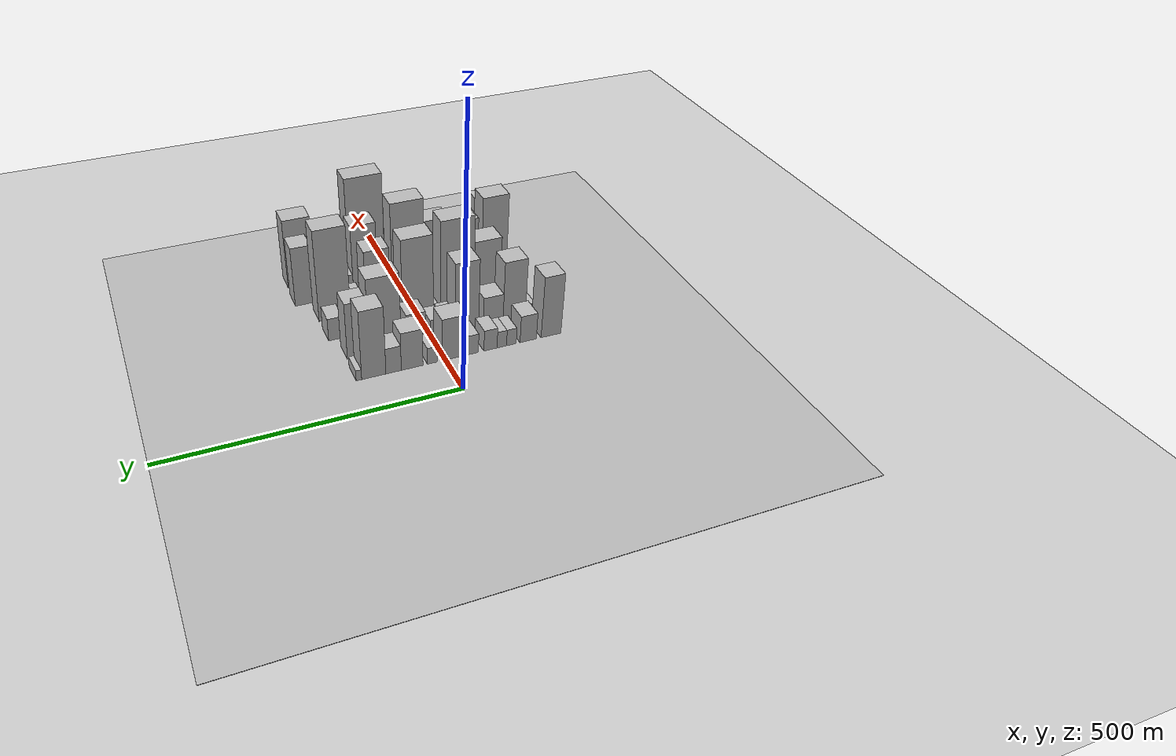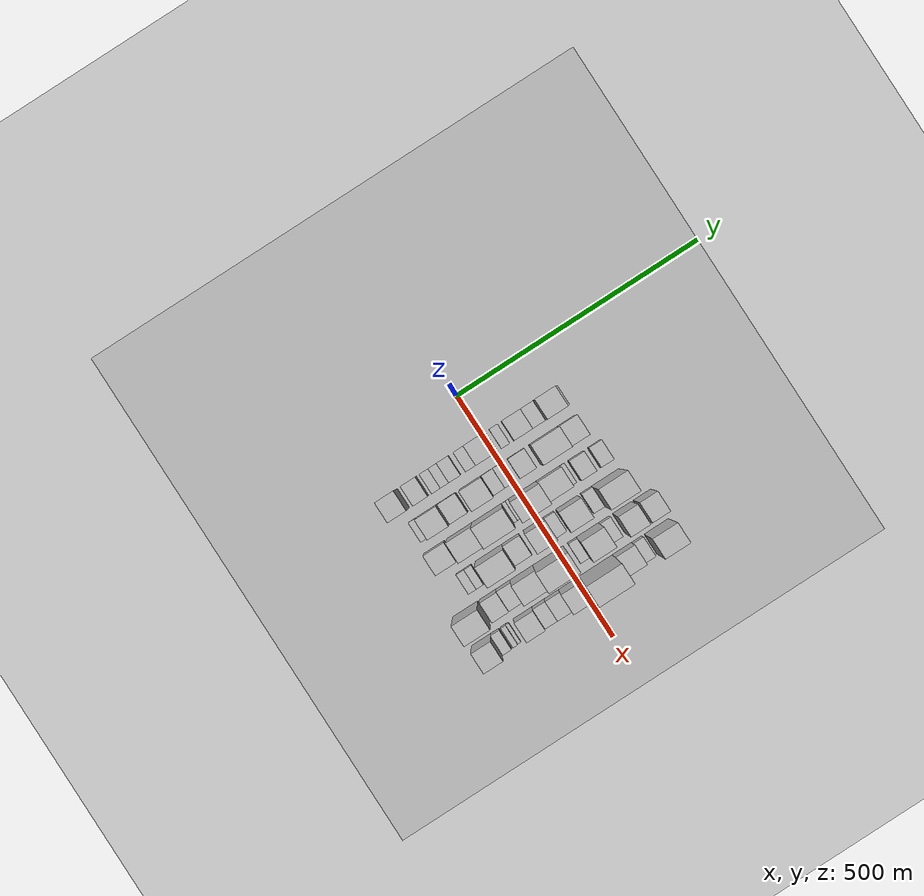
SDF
<sdf version="1.6">
 <world name="default">
  <include><name>ground_plane_1</name><uri>model://HANNAS_ground_plane</uri></include>
  <include>
   <name>ground_plane_2</name>
   <uri>model://HANNAS_ground_plane</uri>
   <pose>100 0 0  0 0 0</pose>
  </include>
  <model name="building_20">
   <static>1</static>
   <pose>100.0000 -193.5699 0 0.000000 0.000000 0.000000</pose>
   <link name="link">
    <pose>0 0 61.50 0 0 0</pose>
    <collision name="collision"><geometry><box><size>40.0000 37.4325 123.0000</size></box></geometry></collision>
    <visual name="visual">
     <cast_shadows>0</cast_shadows>
     <geometry><box><size>40.0000 37.4325 123.0000</size></box></geometry>
     <material>
      <script>
       <uri>model://HANNAS_wall/materials/scripts</uri>
       <uri>model://HANNAS_wall/materials/textures</uri>
       <name>vrc/HANNAS_wall</name>
      </script>
     </material>
    </visual>
   </link>
  </model>
  <model name="building_21">
   <static>1</static>
   <pose>100.0000 -150.5944 0 0.000000 0.000000 0.000000</pose>
   <link name="link">
    <pose>0 0 27.00 0 0 0</pose>
    <collision name="collision"><geometry><box><size>40.0000 30.5184 54.0000</size></box></geometry></collision>
    <visual name="visual">
     <cast_shadows>0</cast_shadows>
     <geometry><box><size>40.0000 30.5184 54.0000</size></box></geometry>
     <material>
      <script>
       <uri>model://HANNAS_wall/materials/scripts</uri>
       <uri>model://HANNAS_wall/materials/textures</uri>
       <name>vrc/HANNAS_wall</name>
      </script>
     </material>
    </visual>
   </link>
  </model>
  <model name="building_22">
   <static>1</static>
   <pose>100.0000 -119.3798 0 0.000000 0.000000 0.000000</pose>
   <link name="link">
    <pose>0 0 16.50 0 0 0</pose>
    <collision name="collision"><geometry><box><size>40.0000 17.9109 33.0000</size></box></geometry></collision>
    <visual name="visual">
     <cast_shadows>0</cast_shadows>
     <geometry><box><size>40.0000 17.9109 33.0000</size></box></geometry>
     <material>
      <script>
       <uri>model://HANNAS_wall/materials/scripts</uri>
       <uri>model://HANNAS_wall/materials/textures</uri>
       <name>vrc/HANNAS_wall</name>
      </script>
     </material>
    </visual>
   </link>
  </model>
  <model name="building_23">
   <static>1</static>
   <pose>100.0000 -101.7180 0 0.000000 0.000000 0.000000</pose>
   <link name="link">
    <pose>0 0 16.50 0 0 0</pose>
    <collision name="collision"><geometry><box><size>40.0000 17.4126 33.0000</size></box></geometry></collision>
    <visual name="visual">
     <cast_shadows>0</cast_shadows>
     <geometry><box><size>40.0000 17.4126 33.0000</size></box></geometry>
     <material>
      <script>
       <uri>model://HANNAS_wall/materials/scripts</uri>
       <uri>model://HANNAS_wall/materials/textures</uri>
       <name>vrc/HANNAS_wall</name>
      </script>
     </material>
    </visual>
   </link>
  </model>
  <model name="building_24">
   <static>1</static>
   <pose>100.0000 -80.9346 0 0.000000 0.000000 0.000000</pose>
   <link name="link">
    <pose>0 0 21.00 0 0 0</pose>
    <collision name="collision"><geometry><box><size>40.0000 24.1541 42.0000</size></box></geometry></collision>
    <visual name="visual">
     <cast_shadows>0</cast_shadows>
     <geometry><box><size>40.0000 24.1541 42.0000</size></box></geometry>
     <material>
      <script>
       <uri>model://HANNAS_wall/materials/scripts</uri>
       <uri>model://HANNAS_wall/materials/textures</uri>
       <name>vrc/HANNAS_wall</name>
      </script>
     </material>
    </visual>
   </link>
  </model>
  <model name="building_25">
   <static>1</static>
   <pose>100.0000 -48.1983 0 0.000000 0.000000 0.000000</pose>
   <link name="link">
    <pose>0 0 19.50 0 0 0</pose>
    <collision name="collision"><geometry><box><size>40.0000 21.3186 39.0000</size></box></geometry></collision>
    <visual name="visual">
     <cast_shadows>0</cast_shadows>
     <geometry><box><size>40.0000 21.3186 39.0000</size></box></geometry>
     <material>
      <script>
       <uri>model://HANNAS_wall/materials/scripts</uri>
       <uri>model://HANNAS_wall/materials/textures</uri>
       <name>vrc/HANNAS_wall</name>
      </script>
     </material>
    </visual>
   </link>
  </model>
  <model name="building_26">
   <static>1</static>
   <pose>100.0000 -15.3454 0 0.000000 0.000000 0.000000</pose>
   <link name="link">
    <pose>0 0 42.00 0 0 0</pose>
    <collision name="collision"><geometry><box><size>40.0000 44.3872 84.0000</size></box></geometry></collision>
    <visual name="visual">
     <cast_shadows>0</cast_shadows>
     <geometry><box><size>40.0000 44.3872 84.0000</size></box></geometry>
     <material>
      <script>
       <uri>model://HANNAS_wall/materials/scripts</uri>
       <uri>model://HANNAS_wall/materials/textures</uri>
       <name>vrc/HANNAS_wall</name>
      </script>
     </material>
    </visual>
   </link>
  </model>
  <model name="building_27">
   <static>1</static>
   <pose>100.0000 23.5425 0 0.000000 0.000000 0.000000</pose>
   <link name="link">
    <pose>0 0 16.50 0 0 0</pose>
    <collision name="collision"><geometry><box><size>40.0000 17.3886 33.0000</size></box></geometry></collision>
    <visual name="visual">
     <cast_shadows>0</cast_shadows>
     <geometry><box><size>40.0000 17.3886 33.0000</size></box></geometry>
     <material>
      <script>
       <uri>model://HANNAS_wall/materials/scripts</uri>
       <uri>model://HANNAS_wall/materials/textures</uri>
       <name>vrc/HANNAS_wall</name>
      </script>
     </material>
    </visual>
   </link>
  </model>
  <model name="building_28">
   <static>1</static>
   <pose>100.0000 59.1614 0 0.000000 0.000000 0.000000</pose>
   <link name="link">
    <pose>0 0 37.50 0 0 0</pose>
    <collision name="collision"><geometry><box><size>40.0000 37.8491 75.0000</size></box></geometry></collision>
    <visual name="visual">
     <cast_shadows>0</cast_shadows>
     <geometry><box><size>40.0000 37.8491 75.0000</size></box></geometry>
     <material>
      <script>
       <uri>model://HANNAS_wall/materials/scripts</uri>
       <uri>model://HANNAS_wall/materials/textures</uri>
       <name>vrc/HANNAS_wall</name>
      </script>
     </material>
    </visual>
   </link>
  </model>
  <model name="building_29">
   <static>1</static>
   <pose>100.0000 91.3784 0 0.000000 0.000000 0.000000</pose>
   <link name="link">
    <pose>0 0 25.50 0 0 0</pose>
    <collision name="collision"><geometry><box><size>40.0000 26.5849 51.0000</size></box></geometry></collision>
    <visual name="visual">
     <cast_shadows>0</cast_shadows>
     <geometry><box><size>40.0000 26.5849 51.0000</size></box></geometry>
     <material>
      <script>
       <uri>model://HANNAS_wall/materials/scripts</uri>
       <uri>model://HANNAS_wall/materials/textures</uri>
       <name>vrc/HANNAS_wall</name>
      </script>
     </material>
    </visual>
   </link>
  </model>
  <model name="building_30">
   <static>1</static>
   <pose>100.0000 125.3945 0 0.000000 0.000000 0.000000</pose>
   <link name="link">
    <pose>0 0 67.50 0 0 0</pose>
    <collision name="collision"><geometry><box><size>40.0000 41.4472 135.0000</size></box></geometry></collision>
    <visual name="visual">
     <cast_shadows>0</cast_shadows>
     <geometry><box><size>40.0000 41.4472 135.0000</size></box></geometry>
     <material>
      <script>
       <uri>model://HANNAS_wall/materials/scripts</uri>
       <uri>model://HANNAS_wall/materials/textures</uri>
       <name>vrc/HANNAS_wall</name>
      </script>
     </material>
    </visual>
   </link>
  </model>
  <model name="building_31">
   <static>1</static>
   <pose>100.0000 150.7980 0 0.000000 0.000000 0.000000</pose>
   <link name="link">
    <pose>0 0 10.50 0 0 0</pose>
    <collision name="collision"><geometry><box><size>40.0000 9.3599 21.0000</size></box></geometry></collision>
    <visual name="visual">
     <cast_shadows>0</cast_shadows>
     <geometry><box><size>40.0000 9.3599 21.0000</size></box></geometry>
     <material>
      <script>
       <uri>model://HANNAS_wall/materials/scripts</uri>
       <uri>model://HANNAS_wall/materials/textures</uri>
       <name>vrc/HANNAS_wall</name>
      </script>
     </material>
    </visual>
   </link>
  </model>
  <model name="building_72">
   <static>1</static>
   <pose>160.0000 -180.8252 0 0.000000 0.000000 0.000000</pose>
   <link name="link">
    <pose>0 0 15.00 0 0 0</pose>
    <collision name="collision"><geometry><box><size>40.0000 17.7668 30.0000</size></box></geometry></collision>
    <visual name="visual">
     <cast_shadows>0</cast_shadows>
     <geometry><box><size>40.0000 17.7668 30.0000</size></box></geometry>
     <material>
      <script>
       <uri>model://HANNAS_wall/materials/scripts</uri>
       <uri>model://HANNAS_wall/materials/textures</uri>
       <name>vrc/HANNAS_wall</name>
      </script>
     </material>
    </visual>
   </link>
  </model>
  <model name="building_73">
   <static>1</static>
   <pose>160.0000 -150.7894 0 0.000000 0.000000 0.000000</pose>
   <link name="link">
    <pose>0 0 63.00 0 0 0</pose>
    <collision name="collision"><geometry><box><size>40.0000 42.3049 126.0000</size></box></geometry></collision>
    <visual name="visual">
     <cast_shadows>0</cast_shadows>
     <geometry><box><size>40.0000 42.3049 126.0000</size></box></geometry>
     <material>
      <script>
       <uri>model://HANNAS_wall/materials/scripts</uri>
       <uri>model://HANNAS_wall/materials/textures</uri>
       <name>vrc/HANNAS_wall</name>
      </script>
     </material>
    </visual>
   </link>
  </model>
  <model name="building_74">
   <static>1</static>
   <pose>160.0000 -111.1979 0 0.000000 0.000000 0.000000</pose>
   <link name="link">
    <pose>0 0 31.50 0 0 0</pose>
    <collision name="collision"><geometry><box><size>40.0000 36.8780 63.0000</size></box></geometry></collision>
    <visual name="visual">
     <cast_shadows>0</cast_shadows>
     <geometry><box><size>40.0000 36.8780 63.0000</size></box></geometry>
     <material>
      <script>
       <uri>model://HANNAS_wall/materials/scripts</uri>
       <uri>model://HANNAS_wall/materials/textures</uri>
       <name>vrc/HANNAS_wall</name>
      </script>
     </material>
    </visual>
   </link>
  </model>
  <model name="building_75">
   <static>1</static>
   <pose>160.0000 -62.0169 0 0.000000 0.000000 0.000000</pose>
   <link name="link">
    <pose>0 0 72.00 0 0 0</pose>
    <collision name="collision"><geometry><box><size>40.0000 43.4841 144.0000</size></box></geometry></collision>
    <visual name="visual">
     <cast_shadows>0</cast_shadows>
     <geometry><box><size>40.0000 43.4841 144.0000</size></box></geometry>
     <material>
      <script>
       <uri>model://HANNAS_wall/materials/scripts</uri>
       <uri>model://HANNAS_wall/materials/textures</uri>
       <name>vrc/HANNAS_wall</name>
      </script>
     </material>
    </visual>
   </link>
  </model>
  <model name="building_76">
   <static>1</static>
   <pose>160.0000 -28.5484 0 0.000000 0.000000 0.000000</pose>
   <link name="link">
    <pose>0 0 22.50 0 0 0</pose>
    <collision name="collision"><geometry><box><size>40.0000 23.4530 45.0000</size></box></geometry></collision>
    <visual name="visual">
     <cast_shadows>0</cast_shadows>
     <geometry><box><size>40.0000 23.4530 45.0000</size></box></geometry>
     <material>
      <script>
       <uri>model://HANNAS_wall/materials/scripts</uri>
       <uri>model://HANNAS_wall/materials/textures</uri>
       <name>vrc/HANNAS_wall</name>
      </script>
     </material>
    </visual>
   </link>
  </model>
  <model name="building_77">
   <static>1</static>
   <pose>160.0000 -5.6875 0 0.000000 0.000000 0.000000</pose>
   <link name="link">
    <pose>0 0 21.00 0 0 0</pose>
    <collision name="collision"><geometry><box><size>40.0000 22.2687 42.0000</size></box></geometry></collision>
    <visual name="visual">
     <cast_shadows>0</cast_shadows>
     <geometry><box><size>40.0000 22.2687 42.0000</size></box></geometry>
     <material>
      <script>
       <uri>model://HANNAS_wall/materials/scripts</uri>
       <uri>model://HANNAS_wall/materials/textures</uri>
       <name>vrc/HANNAS_wall</name>
      </script>
     </material>
    </visual>
   </link>
  </model>
  <model name="building_78">
   <static>1</static>
   <pose>160.0000 30.5514 0 0.000000 0.000000 0.000000</pose>
   <link name="link">
    <pose>0 0 31.50 0 0 0</pose>
    <collision name="collision"><geometry><box><size>40.0000 34.2091 63.0000</size></box></geometry></collision>
    <visual name="visual">
     <cast_shadows>0</cast_shadows>
     <geometry><box><size>40.0000 34.2091 63.0000</size></box></geometry>
     <material>
      <script>
       <uri>model://HANNAS_wall/materials/scripts</uri>
       <uri>model://HANNAS_wall/materials/textures</uri>
       <name>vrc/HANNAS_wall</name>
      </script>
     </material>
    </visual>
   </link>
  </model>
  <model name="building_79">
   <static>1</static>
   <pose>160.0000 86.2601 0 0.000000 0.000000 0.000000</pose>
   <link name="link">
    <pose>0 0 75.00 0 0 0</pose>
    <collision name="collision"><geometry><box><size>40.0000 57.2084 150.0000</size></box></geometry></collision>
    <visual name="visual">
     <cast_shadows>0</cast_shadows>
     <geometry><box><size>40.0000 57.2084 150.0000</size></box></geometry>
     <material>
      <script>
       <uri>model://HANNAS_wall/materials/scripts</uri>
       <uri>model://HANNAS_wall/materials/textures</uri>
       <name>vrc/HANNAS_wall</name>
      </script>
     </material>
    </visual>
   </link>
  </model>
  <model name="building_80">
   <static>1</static>
   <pose>160.0000 133.6153 0 0.000000 0.000000 0.000000</pose>
   <link name="link">
    <pose>0 0 55.50 0 0 0</pose>
    <collision name="collision"><geometry><box><size>40.0000 37.5018 111.0000</size></box></geometry></collision>
    <visual name="visual">
     <cast_shadows>0</cast_shadows>
     <geometry><box><size>40.0000 37.5018 111.0000</size></box></geometry>
     <material>
      <script>
       <uri>model://HANNAS_wall/materials/scripts</uri>
       <uri>model://HANNAS_wall/materials/textures</uri>
       <name>vrc/HANNAS_wall</name>
      </script>
     </material>
    </visual>
   </link>
  </model>
  <model name="building_125">
   <static>1</static>
   <pose>220.0000 -175.5153 0 0.000000 0.000000 0.000000</pose>
   <link name="link">
    <pose>0 0 36.00 0 0 0</pose>
    <collision name="collision"><geometry><box><size>40.0000 42.4673 72.0000</size></box></geometry></collision>
    <visual name="visual">
     <cast_shadows>0</cast_shadows>
     <geometry><box><size>40.0000 42.4673 72.0000</size></box></geometry>
     <material>
      <script>
       <uri>model://HANNAS_wall/materials/scripts</uri>
       <uri>model://HANNAS_wall/materials/textures</uri>
       <name>vrc/HANNAS_wall</name>
      </script>
     </material>
    </visual>
   </link>
  </model>
  <model name="building_126">
   <static>1</static>
   <pose>220.0000 -123.9779 0 0.000000 0.000000 0.000000</pose>
   <link name="link">
    <pose>0 0 69.00 0 0 0</pose>
    <collision name="collision"><geometry><box><size>40.0000 50.6076 138.0000</size></box></geometry></collision>
    <visual name="visual">
     <cast_shadows>0</cast_shadows>
     <geometry><box><size>40.0000 50.6076 138.0000</size></box></geometry>
     <material>
      <script>
       <uri>model://HANNAS_wall/materials/scripts</uri>
       <uri>model://HANNAS_wall/materials/textures</uri>
       <name>vrc/HANNAS_wall</name>
      </script>
     </material>
    </visual>
   </link>
  </model>
  <model name="building_127">
   <static>1</static>
   <pose>220.0000 -67.7562 0 0.000000 0.000000 0.000000</pose>
   <link name="link">
    <pose>0 0 96.00 0 0 0</pose>
    <collision name="collision"><geometry><box><size>40.0000 61.8358 192.0000</size></box></geometry></collision>
    <visual name="visual">
     <cast_shadows>0</cast_shadows>
     <geometry><box><size>40.0000 61.8358 192.0000</size></box></geometry>
     <material>
      <script>
       <uri>model://HANNAS_wall/materials/scripts</uri>
       <uri>model://HANNAS_wall/materials/textures</uri>
       <name>vrc/HANNAS_wall</name>
      </script>
     </material>
    </visual>
   </link>
  </model>
  <model name="building_128">
   <static>1</static>
   <pose>220.0000 -33.0314 0 0.000000 0.000000 0.000000</pose>
   <link name="link">
    <pose>0 0 9.00 0 0 0</pose>
    <collision name="collision"><geometry><box><size>40.0000 7.6139 18.0000</size></box></geometry></collision>
    <visual name="visual">
     <cast_shadows>0</cast_shadows>
     <geometry><box><size>40.0000 7.6139 18.0000</size></box></geometry>
     <material>
      <script>
       <uri>model://HANNAS_wall/materials/scripts</uri>
       <uri>model://HANNAS_wall/materials/textures</uri>
       <name>vrc/HANNAS_wall</name>
      </script>
     </material>
    </visual>
   </link>
  </model>
  <model name="building_129">
   <static>1</static>
   <pose>220.0000 -25.9562 0 0.000000 0.000000 0.000000</pose>
   <link name="link">
    <pose>0 0 7.50 0 0 0</pose>
    <collision name="collision"><geometry><box><size>40.0000 6.5365 15.0000</size></box></geometry></collision>
    <visual name="visual">
     <cast_shadows>0</cast_shadows>
     <geometry><box><size>40.0000 6.5365 15.0000</size></box></geometry>
     <material>
      <script>
       <uri>model://HANNAS_wall/materials/scripts</uri>
       <uri>model://HANNAS_wall/materials/textures</uri>
       <name>vrc/HANNAS_wall</name>
      </script>
     </material>
    </visual>
   </link>
  </model>
  <model name="building_130">
   <static>1</static>
   <pose>220.0000 5.8965 0 0.000000 0.000000 0.000000</pose>
   <link name="link">
    <pose>0 0 85.50 0 0 0</pose>
    <collision name="collision"><geometry><box><size>40.0000 57.1688 171.0000</size></box></geometry></collision>
    <visual name="visual">
     <cast_shadows>0</cast_shadows>
     <geometry><box><size>40.0000 57.1688 171.0000</size></box></geometry>
     <material>
      <script>
       <uri>model://HANNAS_wall/materials/scripts</uri>
       <uri>model://HANNAS_wall/materials/textures</uri>
       <name>vrc/HANNAS_wall</name>
      </script>
     </material>
    </visual>
   </link>
  </model>
  <model name="building_131">
   <static>1</static>
   <pose>220.0000 58.8284 0 0.000000 0.000000 0.000000</pose>
   <link name="link">
    <pose>0 0 42.00 0 0 0</pose>
    <collision name="collision"><geometry><box><size>40.0000 48.6949 84.0000</size></box></geometry></collision>
    <visual name="visual">
     <cast_shadows>0</cast_shadows>
     <geometry><box><size>40.0000 48.6949 84.0000</size></box></geometry>
     <material>
      <script>
       <uri>model://HANNAS_wall/materials/scripts</uri>
       <uri>model://HANNAS_wall/materials/textures</uri>
       <name>vrc/HANNAS_wall</name>
      </script>
     </material>
    </visual>
   </link>
  </model>
  <model name="building_132">
   <static>1</static>
   <pose>220.0000 88.0562 0 0.000000 0.000000 0.000000</pose>
   <link name="link">
    <pose>0 0 10.50 0 0 0</pose>
    <collision name="collision"><geometry><box><size>40.0000 9.7608 21.0000</size></box></geometry></collision>
    <visual name="visual">
     <cast_shadows>0</cast_shadows>
     <geometry><box><size>40.0000 9.7608 21.0000</size></box></geometry>
     <material>
      <script>
       <uri>model://HANNAS_wall/materials/scripts</uri>
       <uri>model://HANNAS_wall/materials/textures</uri>
       <name>vrc/HANNAS_wall</name>
      </script>
     </material>
    </visual>
   </link>
  </model>
  <model name="building_133">
   <static>1</static>
   <pose>220.0000 115.6216 0 0.000000 0.000000 0.000000</pose>
   <link name="link">
    <pose>0 0 30.00 0 0 0</pose>
    <collision name="collision"><geometry><box><size>40.0000 31.3701 60.0000</size></box></geometry></collision>
    <visual name="visual">
     <cast_shadows>0</cast_shadows>
     <geometry><box><size>40.0000 31.3701 60.0000</size></box></geometry>
     <material>
      <script>
       <uri>model://HANNAS_wall/materials/scripts</uri>
       <uri>model://HANNAS_wall/materials/textures</uri>
       <name>vrc/HANNAS_wall</name>
      </script>
     </material>
    </visual>
   </link>
  </model>
  <model name="building_134">
   <static>1</static>
   <pose>220.0000 154.5088 0 0.000000 0.000000 0.000000</pose>
   <link name="link">
    <pose>0 0 22.50 0 0 0</pose>
    <collision name="collision"><geometry><box><size>40.0000 26.4043 45.0000</size></box></geometry></collision>
    <visual name="visual">
     <cast_shadows>0</cast_shadows>
     <geometry><box><size>40.0000 26.4043 45.0000</size></box></geometry>
     <material>
      <script>
       <uri>model://HANNAS_wall/materials/scripts</uri>
       <uri>model://HANNAS_wall/materials/textures</uri>
       <name>vrc/HANNAS_wall</name>
      </script>
     </material>
    </visual>
   </link>
  </model>
  <model name="building_177">
   <static>1</static>
   <pose>280.0000 -161.2898 0 0.000000 0.000000 0.000000</pose>
   <link name="link">
    <pose>0 0 15.00 0 0 0</pose>
    <collision name="collision"><geometry><box><size>40.0000 16.0286 30.0000</size></box></geometry></collision>
    <visual name="visual">
     <cast_shadows>0</cast_shadows>
     <geometry><box><size>40.0000 16.0286 30.0000</size></box></geometry>
     <material>
      <script>
       <uri>model://HANNAS_wall/materials/scripts</uri>
       <uri>model://HANNAS_wall/materials/textures</uri>
       <name>vrc/HANNAS_wall</name>
      </script>
     </material>
    </visual>
   </link>
  </model>
  <model name="building_178">
   <static>1</static>
   <pose>280.0000 -145.7543 0 0.000000 0.000000 0.000000</pose>
   <link name="link">
    <pose>0 0 15.00 0 0 0</pose>
    <collision name="collision"><geometry><box><size>40.0000 15.0425 30.0000</size></box></geometry></collision>
    <visual name="visual">
     <cast_shadows>0</cast_shadows>
     <geometry><box><size>40.0000 15.0425 30.0000</size></box></geometry>
     <material>
      <script>
       <uri>model://HANNAS_wall/materials/scripts</uri>
       <uri>model://HANNAS_wall/materials/textures</uri>
       <name>vrc/HANNAS_wall</name>
      </script>
     </material>
    </visual>
   </link>
  </model>
  <model name="building_179">
   <static>1</static>
   <pose>280.0000 -102.4021 0 0.000000 0.000000 0.000000</pose>
   <link name="link">
    <pose>0 0 73.50 0 0 0</pose>
    <collision name="collision"><geometry><box><size>40.0000 55.6617 147.0000</size></box></geometry></collision>
    <visual name="visual">
     <cast_shadows>0</cast_shadows>
     <geometry><box><size>40.0000 55.6617 147.0000</size></box></geometry>
     <material>
      <script>
       <uri>model://HANNAS_wall/materials/scripts</uri>
       <uri>model://HANNAS_wall/materials/textures</uri>
       <name>vrc/HANNAS_wall</name>
      </script>
     </material>
    </visual>
   </link>
  </model>
  <model name="building_180">
   <static>1</static>
   <pose>280.0000 -57.1829 0 0.000000 0.000000 0.000000</pose>
   <link name="link">
    <pose>0 0 33.00 0 0 0</pose>
    <collision name="collision"><geometry><box><size>40.0000 34.7767 66.0000</size></box></geometry></collision>
    <visual name="visual">
     <cast_shadows>0</cast_shadows>
     <geometry><box><size>40.0000 34.7767 66.0000</size></box></geometry>
     <material>
      <script>
       <uri>model://HANNAS_wall/materials/scripts</uri>
       <uri>model://HANNAS_wall/materials/textures</uri>
       <name>vrc/HANNAS_wall</name>
      </script>
     </material>
    </visual>
   </link>
  </model>
  <model name="building_181">
   <static>1</static>
   <pose>280.0000 -10.0562 0 0.000000 0.000000 0.000000</pose>
   <link name="link">
    <pose>0 0 58.50 0 0 0</pose>
    <collision name="collision"><geometry><box><size>40.0000 41.4768 117.0000</size></box></geometry></collision>
    <visual name="visual">
     <cast_shadows>0</cast_shadows>
     <geometry><box><size>40.0000 41.4768 117.0000</size></box></geometry>
     <material>
      <script>
       <uri>model://HANNAS_wall/materials/scripts</uri>
       <uri>model://HANNAS_wall/materials/textures</uri>
       <name>vrc/HANNAS_wall</name>
      </script>
     </material>
    </visual>
   </link>
  </model>
  <model name="building_182">
   <static>1</static>
   <pose>280.0000 21.4436 0 0.000000 0.000000 0.000000</pose>
   <link name="link">
    <pose>0 0 21.00 0 0 0</pose>
    <collision name="collision"><geometry><box><size>40.0000 21.5228 42.0000</size></box></geometry></collision>
    <visual name="visual">
     <cast_shadows>0</cast_shadows>
     <geometry><box><size>40.0000 21.5228 42.0000</size></box></geometry>
     <material>
      <script>
       <uri>model://HANNAS_wall/materials/scripts</uri>
       <uri>model://HANNAS_wall/materials/textures</uri>
       <name>vrc/HANNAS_wall</name>
      </script>
     </material>
    </visual>
   </link>
  </model>
  <model name="building_183">
   <static>1</static>
   <pose>280.0000 59.0211 0 0.000000 0.000000 0.000000</pose>
   <link name="link">
    <pose>0 0 61.50 0 0 0</pose>
    <collision name="collision"><geometry><box><size>40.0000 45.6321 123.0000</size></box></geometry></collision>
    <visual name="visual">
     <cast_shadows>0</cast_shadows>
     <geometry><box><size>40.0000 45.6321 123.0000</size></box></geometry>
     <material>
      <script>
       <uri>model://HANNAS_wall/materials/scripts</uri>
       <uri>model://HANNAS_wall/materials/textures</uri>
       <name>vrc/HANNAS_wall</name>
      </script>
     </material>
    </visual>
   </link>
  </model>
  <model name="building_184">
   <static>1</static>
   <pose>280.0000 99.1139 0 0.000000 0.000000 0.000000</pose>
   <link name="link">
    <pose>0 0 19.50 0 0 0</pose>
    <collision name="collision"><geometry><box><size>40.0000 22.5534 39.0000</size></box></geometry></collision>
    <visual name="visual">
     <cast_shadows>0</cast_shadows>
     <geometry><box><size>40.0000 22.5534 39.0000</size></box></geometry>
     <material>
      <script>
       <uri>model://HANNAS_wall/materials/scripts</uri>
       <uri>model://HANNAS_wall/materials/textures</uri>
       <name>vrc/HANNAS_wall</name>
      </script>
     </material>
    </visual>
   </link>
  </model>
  <model name="building_185">
   <static>1</static>
   <pose>280.0000 139.1450 0 0.000000 0.000000 0.000000</pose>
   <link name="link">
    <pose>0 0 91.50 0 0 0</pose>
    <collision name="collision"><geometry><box><size>40.0000 57.5088 183.0000</size></box></geometry></collision>
    <visual name="visual">
     <cast_shadows>0</cast_shadows>
     <geometry><box><size>40.0000 57.5088 183.0000</size></box></geometry>
     <material>
      <script>
       <uri>model://HANNAS_wall/materials/scripts</uri>
       <uri>model://HANNAS_wall/materials/textures</uri>
       <name>vrc/HANNAS_wall</name>
      </script>
     </material>
    </visual>
   </link>
  </model>
  <model name="building_226">
   <static>1</static>
   <pose>340.0000 -189.4691 0 0.000000 0.000000 0.000000</pose>
   <link name="link">
    <pose>0 0 73.50 0 0 0</pose>
    <collision name="collision"><geometry><box><size>40.0000 51.2768 147.0000</size></box></geometry></collision>
    <visual name="visual">
     <cast_shadows>0</cast_shadows>
     <geometry><box><size>40.0000 51.2768 147.0000</size></box></geometry>
     <material>
      <script>
       <uri>model://HANNAS_wall/materials/scripts</uri>
       <uri>model://HANNAS_wall/materials/textures</uri>
       <name>vrc/HANNAS_wall</name>
      </script>
     </material>
    </visual>
   </link>
  </model>
  <model name="building_227">
   <static>1</static>
   <pose>340.0000 -142.7699 0 0.000000 0.000000 0.000000</pose>
   <link name="link">
    <pose>0 0 33.00 0 0 0</pose>
    <collision name="collision"><geometry><box><size>40.0000 34.1215 66.0000</size></box></geometry></collision>
    <visual name="visual">
     <cast_shadows>0</cast_shadows>
     <geometry><box><size>40.0000 34.1215 66.0000</size></box></geometry>
     <material>
      <script>
       <uri>model://HANNAS_wall/materials/scripts</uri>
       <uri>model://HANNAS_wall/materials/textures</uri>
       <name>vrc/HANNAS_wall</name>
      </script>
     </material>
    </visual>
   </link>
  </model>
  <model name="building_228">
   <static>1</static>
   <pose>340.0000 -111.1681 0 0.000000 0.000000 0.000000</pose>
   <link name="link">
    <pose>0 0 28.50 0 0 0</pose>
    <collision name="collision"><geometry><box><size>40.0000 29.0821 57.0000</size></box></geometry></collision>
    <visual name="visual">
     <cast_shadows>0</cast_shadows>
     <geometry><box><size>40.0000 29.0821 57.0000</size></box></geometry>
     <material>
      <script>
       <uri>model://HANNAS_wall/materials/scripts</uri>
       <uri>model://HANNAS_wall/materials/textures</uri>
       <name>vrc/HANNAS_wall</name>
      </script>
     </material>
    </visual>
   </link>
  </model>
  <model name="building_229">
   <static>1</static>
   <pose>340.0000 -73.0382 0 0.000000 0.000000 0.000000</pose>
   <link name="link">
    <pose>0 0 61.50 0 0 0</pose>
    <collision name="collision"><geometry><box><size>40.0000 47.1776 123.0000</size></box></geometry></collision>
    <visual name="visual">
     <cast_shadows>0</cast_shadows>
     <geometry><box><size>40.0000 47.1776 123.0000</size></box></geometry>
     <material>
      <script>
       <uri>model://HANNAS_wall/materials/scripts</uri>
       <uri>model://HANNAS_wall/materials/textures</uri>
       <name>vrc/HANNAS_wall</name>
      </script>
     </material>
    </visual>
   </link>
  </model>
  <model name="building_230">
   <static>1</static>
   <pose>340.0000 -18.1476 0 0.000000 0.000000 0.000000</pose>
   <link name="link">
    <pose>0 0 85.50 0 0 0</pose>
    <collision name="collision"><geometry><box><size>40.0000 62.6038 171.0000</size></box></geometry></collision>
    <visual name="visual">
     <cast_shadows>0</cast_shadows>
     <geometry><box><size>40.0000 62.6038 171.0000</size></box></geometry>
     <material>
      <script>
       <uri>model://HANNAS_wall/materials/scripts</uri>
       <uri>model://HANNAS_wall/materials/textures</uri>
       <name>vrc/HANNAS_wall</name>
      </script>
     </material>
    </visual>
   </link>
  </model>
  <model name="building_231">
   <static>1</static>
   <pose>340.0000 31.3064 0 0.000000 0.000000 0.000000</pose>
   <link name="link">
    <pose>0 0 18.00 0 0 0</pose>
    <collision name="collision"><geometry><box><size>40.0000 18.3043 36.0000</size></box></geometry></collision>
    <visual name="visual">
     <cast_shadows>0</cast_shadows>
     <geometry><box><size>40.0000 18.3043 36.0000</size></box></geometry>
     <material>
      <script>
       <uri>model://HANNAS_wall/materials/scripts</uri>
       <uri>model://HANNAS_wall/materials/textures</uri>
       <name>vrc/HANNAS_wall</name>
      </script>
     </material>
    </visual>
   </link>
  </model>
  <model name="building_232">
   <static>1</static>
   <pose>340.0000 63.5755 0 0.000000 0.000000 0.000000</pose>
   <link name="link">
    <pose>0 0 70.50 0 0 0</pose>
    <collision name="collision"><geometry><box><size>40.0000 46.2339 141.0000</size></box></geometry></collision>
    <visual name="visual">
     <cast_shadows>0</cast_shadows>
     <geometry><box><size>40.0000 46.2339 141.0000</size></box></geometry>
     <material>
      <script>
       <uri>model://HANNAS_wall/materials/scripts</uri>
       <uri>model://HANNAS_wall/materials/textures</uri>
       <name>vrc/HANNAS_wall</name>
      </script>
     </material>
    </visual>
   </link>
  </model>
  <model name="building_233">
   <static>1</static>
   <pose>340.0000 97.7251 0 0.000000 0.000000 0.000000</pose>
   <link name="link">
    <pose>0 0 21.00 0 0 0</pose>
    <collision name="collision"><geometry><box><size>40.0000 22.0653 42.0000</size></box></geometry></collision>
    <visual name="visual">
     <cast_shadows>0</cast_shadows>
     <geometry><box><size>40.0000 22.0653 42.0000</size></box></geometry>
     <material>
      <script>
       <uri>model://HANNAS_wall/materials/scripts</uri>
       <uri>model://HANNAS_wall/materials/textures</uri>
       <name>vrc/HANNAS_wall</name>
      </script>
     </material>
    </visual>
   </link>
  </model>
  <model name="building_234">
   <static>1</static>
   <pose>340.0000 135.4075 0 0.000000 0.000000 0.000000</pose>
   <link name="link">
    <pose>0 0 63.00 0 0 0</pose>
    <collision name="collision"><geometry><box><size>40.0000 39.2995 126.0000</size></box></geometry></collision>
    <visual name="visual">
     <cast_shadows>0</cast_shadows>
     <geometry><box><size>40.0000 39.2995 126.0000</size></box></geometry>
     <material>
      <script>
       <uri>model://HANNAS_wall/materials/scripts</uri>
       <uri>model://HANNAS_wall/materials/textures</uri>
       <name>vrc/HANNAS_wall</name>
      </script>
     </material>
    </visual>
   </link>
  </model>
  <model name="building_235">
   <static>1</static>
   <pose>340.0000 177.0883 0 0.000000 0.000000 0.000000</pose>
   <link name="link">
    <pose>0 0 60.00 0 0 0</pose>
    <collision name="collision"><geometry><box><size>40.0000 36.0619 120.0000</size></box></geometry></collision>
    <visual name="visual">
     <cast_shadows>0</cast_shadows>
     <geometry><box><size>40.0000 36.0619 120.0000</size></box></geometry>
     <material>
      <script>
       <uri>model://HANNAS_wall/materials/scripts</uri>
       <uri>model://HANNAS_wall/materials/textures</uri>
       <name>vrc/HANNAS_wall</name>
      </script>
     </material>
    </visual>
   </link>
  </model>
  <model name="building_277">
   <static>1</static>
   <pose>400.0000 -196.0537 0 0.000000 0.000000 0.000000</pose>
   <link name="link">
    <pose>0 0 54.00 0 0 0</pose>
    <collision name="collision"><geometry><box><size>40.0000 38.8964 108.0000</size></box></geometry></collision>
    <visual name="visual">
     <cast_shadows>0</cast_shadows>
     <geometry><box><size>40.0000 38.8964 108.0000</size></box></geometry>
     <material>
      <script>
       <uri>model://HANNAS_wall/materials/scripts</uri>
       <uri>model://HANNAS_wall/materials/textures</uri>
       <name>vrc/HANNAS_wall</name>
      </script>
     </material>
    </visual>
   </link>
  </model>
  <model name="building_278">
   <static>1</static>
   <pose>400.0000 -167.3866 0 0.000000 0.000000 0.000000</pose>
   <link name="link">
    <pose>0 0 16.50 0 0 0</pose>
    <collision name="collision"><geometry><box><size>40.0000 18.4376 33.0000</size></box></geometry></collision>
    <visual name="visual">
     <cast_shadows>0</cast_shadows>
     <geometry><box><size>40.0000 18.4376 33.0000</size></box></geometry>
     <material>
      <script>
       <uri>model://HANNAS_wall/materials/scripts</uri>
       <uri>model://HANNAS_wall/materials/textures</uri>
       <name>vrc/HANNAS_wall</name>
      </script>
     </material>
    </visual>
   </link>
  </model>
  <model name="building_279">
   <static>1</static>
   <pose>400.0000 -150.1464 0 0.000000 0.000000 0.000000</pose>
   <link name="link">
    <pose>0 0 12.00 0 0 0</pose>
    <collision name="collision"><geometry><box><size>40.0000 10.0428 24.0000</size></box></geometry></collision>
    <visual name="visual">
     <cast_shadows>0</cast_shadows>
     <geometry><box><size>40.0000 10.0428 24.0000</size></box></geometry>
     <material>
      <script>
       <uri>model://HANNAS_wall/materials/scripts</uri>
       <uri>model://HANNAS_wall/materials/textures</uri>
       <name>vrc/HANNAS_wall</name>
      </script>
     </material>
    </visual>
   </link>
  </model>
  <model name="building_280">
   <static>1</static>
   <pose>400.0000 -141.8280 0 0.000000 0.000000 0.000000</pose>
   <link name="link">
    <pose>0 0 7.50 0 0 0</pose>
    <collision name="collision"><geometry><box><size>40.0000 6.5940 15.0000</size></box></geometry></collision>
    <visual name="visual">
     <cast_shadows>0</cast_shadows>
     <geometry><box><size>40.0000 6.5940 15.0000</size></box></geometry>
     <material>
      <script>
       <uri>model://HANNAS_wall/materials/scripts</uri>
       <uri>model://HANNAS_wall/materials/textures</uri>
       <name>vrc/HANNAS_wall</name>
      </script>
     </material>
    </visual>
   </link>
  </model>
  <model name="building_281">
   <static>1</static>
   <pose>400.0000 -109.4619 0 0.000000 0.000000 0.000000</pose>
   <link name="link">
    <pose>0 0 34.50 0 0 0</pose>
    <collision name="collision"><geometry><box><size>40.0000 38.1383 69.0000</size></box></geometry></collision>
    <visual name="visual">
     <cast_shadows>0</cast_shadows>
     <geometry><box><size>40.0000 38.1383 69.0000</size></box></geometry>
     <material>
      <script>
       <uri>model://HANNAS_wall/materials/scripts</uri>
       <uri>model://HANNAS_wall/materials/textures</uri>
       <name>vrc/HANNAS_wall</name>
      </script>
     </material>
    </visual>
   </link>
  </model>
  <model name="building_282">
   <static>1</static>
   <pose>400.0000 -77.6637 0 0.000000 0.000000 0.000000</pose>
   <link name="link">
    <pose>0 0 24.00 0 0 0</pose>
    <collision name="collision"><geometry><box><size>40.0000 25.4581 48.0000</size></box></geometry></collision>
    <visual name="visual">
     <cast_shadows>0</cast_shadows>
     <geometry><box><size>40.0000 25.4581 48.0000</size></box></geometry>
     <material>
      <script>
       <uri>model://HANNAS_wall/materials/scripts</uri>
       <uri>model://HANNAS_wall/materials/textures</uri>
       <name>vrc/HANNAS_wall</name>
      </script>
     </material>
    </visual>
   </link>
  </model>
  <model name="building_283">
   <static>1</static>
   <pose>400.0000 -50.0183 0 0.000000 0.000000 0.000000</pose>
   <link name="link">
    <pose>0 0 25.50 0 0 0</pose>
    <collision name="collision"><geometry><box><size>40.0000 29.8327 51.0000</size></box></geometry></collision>
    <visual name="visual">
     <cast_shadows>0</cast_shadows>
     <geometry><box><size>40.0000 29.8327 51.0000</size></box></geometry>
     <material>
      <script>
       <uri>model://HANNAS_wall/materials/scripts</uri>
       <uri>model://HANNAS_wall/materials/textures</uri>
       <name>vrc/HANNAS_wall</name>
      </script>
     </material>
    </visual>
   </link>
  </model>
  <model name="building_284">
   <static>1</static>
   <pose>400.0000 -18.3392 0 0.000000 0.000000 0.000000</pose>
   <link name="link">
    <pose>0 0 49.50 0 0 0</pose>
    <collision name="collision"><geometry><box><size>40.0000 33.5257 99.0000</size></box></geometry></collision>
    <visual name="visual">
     <cast_shadows>0</cast_shadows>
     <geometry><box><size>40.0000 33.5257 99.0000</size></box></geometry>
     <material>
      <script>
       <uri>model://HANNAS_wall/materials/scripts</uri>
       <uri>model://HANNAS_wall/materials/textures</uri>
       <name>vrc/HANNAS_wall</name>
      </script>
     </material>
    </visual>
   </link>
  </model>
  <model name="building_285">
   <static>1</static>
   <pose>400.0000 42.1575 0 0.000000 0.000000 0.000000</pose>
   <link name="link">
    <pose>0 0 100.50 0 0 0</pose>
    <collision name="collision"><geometry><box><size>40.0000 69.4676 201.0000</size></box></geometry></collision>
    <visual name="visual">
     <cast_shadows>0</cast_shadows>
     <geometry><box><size>40.0000 69.4676 201.0000</size></box></geometry>
     <material>
      <script>
       <uri>model://HANNAS_wall/materials/scripts</uri>
       <uri>model://HANNAS_wall/materials/textures</uri>
       <name>vrc/HANNAS_wall</name>
      </script>
     </material>
    </visual>
   </link>
  </model>
  <model name="building_286">
   <static>1</static>
   <pose>400.0000 96.6674 0 0.000000 0.000000 0.000000</pose>
   <link name="link">
    <pose>0 0 34.50 0 0 0</pose>
    <collision name="collision"><geometry><box><size>40.0000 39.5522 69.0000</size></box></geometry></collision>
    <visual name="visual">
     <cast_shadows>0</cast_shadows>
     <geometry><box><size>40.0000 39.5522 69.0000</size></box></geometry>
     <material>
      <script>
       <uri>model://HANNAS_wall/materials/scripts</uri>
       <uri>model://HANNAS_wall/materials/textures</uri>
       <name>vrc/HANNAS_wall</name>
      </script>
     </material>
    </visual>
   </link>
  </model>
  <model name="building_287">
   <static>1</static>
   <pose>400.0000 127.1560 0 0.000000 0.000000 0.000000</pose>
   <link name="link">
    <pose>0 0 18.00 0 0 0</pose>
    <collision name="collision"><geometry><box><size>40.0000 21.4249 36.0000</size></box></geometry></collision>
    <visual name="visual">
     <cast_shadows>0</cast_shadows>
     <geometry><box><size>40.0000 21.4249 36.0000</size></box></geometry>
     <material>
      <script>
       <uri>model://HANNAS_wall/materials/scripts</uri>
       <uri>model://HANNAS_wall/materials/textures</uri>
       <name>vrc/HANNAS_wall</name>
      </script>
     </material>
    </visual>
   </link>
  </model>
  <model name="building_288">
   <static>1</static>
   <pose>400.0000 167.9979 0 0.000000 0.000000 0.000000</pose>
   <link name="link">
    <pose>0 0 70.50 0 0 0</pose>
    <collision name="collision"><geometry><box><size>40.0000 50.2590 141.0000</size></box></geometry></collision>
    <visual name="visual">
     <cast_shadows>0</cast_shadows>
     <geometry><box><size>40.0000 50.2590 141.0000</size></box></geometry>
     <material>
      <script>
       <uri>model://HANNAS_wall/materials/scripts</uri>
       <uri>model://HANNAS_wall/materials/textures</uri>
       <name>vrc/HANNAS_wall</name>
      </script>
     </material>
    </visual>
   </link>
  </model>
 </world>
</sdf>
